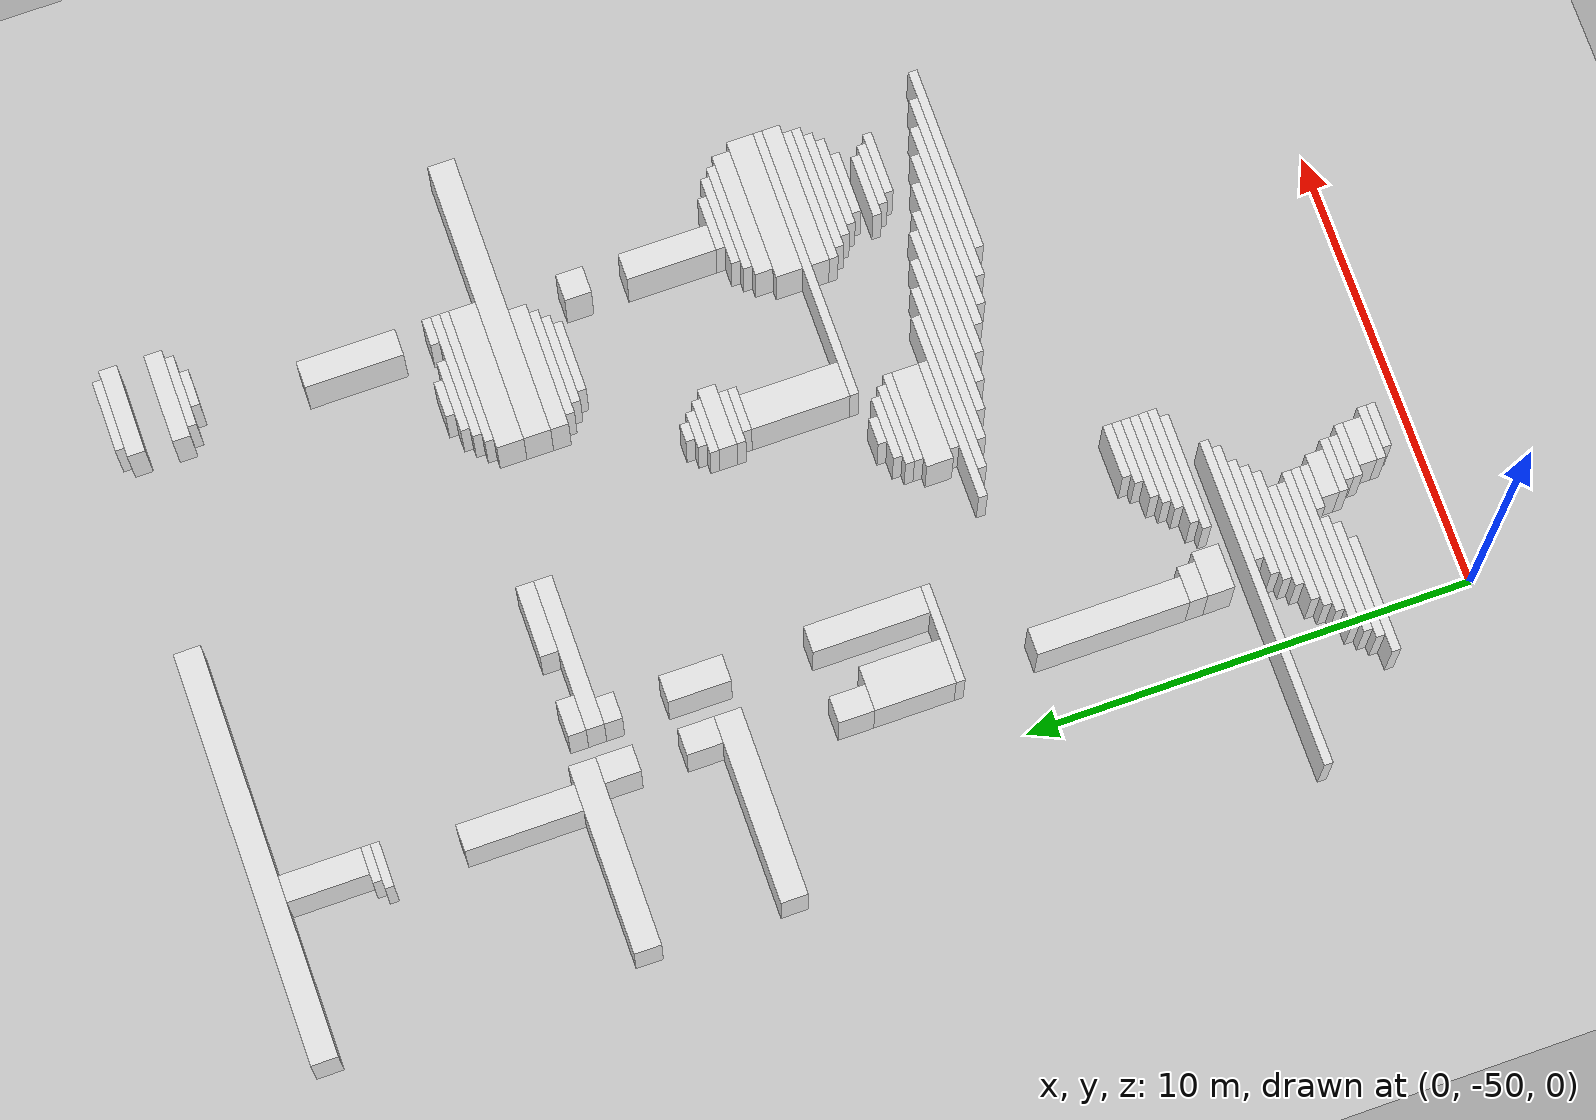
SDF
<sdf version="1.7">
 <world name="default">
  <model name="ground_plane">
   <static>1</static>
   <link name="link">
    <collision name="collision">
     <geometry><plane><normal>0 0 1</normal><size>120 120</size></plane></geometry>
    </collision>
    <visual name="visual">
     <geometry><plane><normal>0 0 1</normal><size>120 120</size></plane></geometry>
     <material>
      <script><uri>file://media/materials/scripts/gazebo.material</uri><name>Gazebo/Grey</name></script>
     </material>
    </visual>
   </link>
  </model>
  <model name="random_complex_02_model">
   <static>1</static>
   <link name="obs_2906">
    <pose>12.6000 -23.9000 0.8000 0 0 0</pose>
    <collision name="obs_2906_col"><geometry><box><size>1.6000 0.2000 1.6000</size></box></geometry></collision>
    <visual name="obs_2906_vis">
     <geometry><box><size>1.6000 0.2000 1.6000</size></box></geometry>
     <material>
      <script><uri>file://media/materials/scripts/gazebo.material</uri><name>Gazebo/White</name></script>
     </material>
    </visual>
   </link>
   <link name="obs_2909">
    <pose>2.6000 -23.9000 0.8000 0 0 0</pose>
    <collision name="obs_2909_col"><geometry><box><size>9.2000 0.6000 1.6000</size></box></geometry></collision>
    <visual name="obs_2909_vis">
     <geometry><box><size>9.2000 0.6000 1.6000</size></box></geometry>
     <material>
      <script><uri>file://media/materials/scripts/gazebo.material</uri><name>Gazebo/White</name></script>
     </material>
    </visual>
   </link>
   <link name="obs_2919">
    <pose>12.6000 -24.2000 0.8000 0 0 0</pose>
    <collision name="obs_2919_col"><geometry><box><size>2.0000 0.4000 1.6000</size></box></geometry></collision>
    <visual name="obs_2919_vis">
     <geometry><box><size>2.0000 0.4000 1.6000</size></box></geometry>
     <material>
      <script><uri>file://media/materials/scripts/gazebo.material</uri><name>Gazebo/White</name></script>
     </material>
    </visual>
   </link>
   <link name="obs_2958">
    <pose>12.6000 -25.2000 0.8000 0 0 0</pose>
    <collision name="obs_2958_col"><geometry><box><size>2.0000 0.4000 1.6000</size></box></geometry></collision>
    <visual name="obs_2958_vis">
     <geometry><box><size>2.0000 0.4000 1.6000</size></box></geometry>
     <material>
      <script><uri>file://media/materials/scripts/gazebo.material</uri><name>Gazebo/White</name></script>
     </material>
    </visual>
   </link>
   <link name="obs_2969">
    <pose>12.6000 -25.5000 0.8000 0 0 0</pose>
    <collision name="obs_2969_col"><geometry><box><size>1.6000 0.2000 1.6000</size></box></geometry></collision>
    <visual name="obs_2969_vis">
     <geometry><box><size>1.6000 0.2000 1.6000</size></box></geometry>
     <material>
      <script><uri>file://media/materials/scripts/gazebo.material</uri><name>Gazebo/White</name></script>
     </material>
    </visual>
   </link>
   <link name="obs_2974">
    <pose>12.6000 -25.7000 0.8000 0 0 0</pose>
    <collision name="obs_2974_col"><geometry><box><size>0.8000 0.2000 1.6000</size></box></geometry></collision>
    <visual name="obs_2974_vis">
     <geometry><box><size>0.8000 0.2000 1.6000</size></box></geometry>
     <material>
      <script><uri>file://media/materials/scripts/gazebo.material</uri><name>Gazebo/White</name></script>
     </material>
    </visual>
   </link>
   <link name="obs_2977">
    <pose>1.7000 -25.1000 0.8000 0 0 0</pose>
    <collision name="obs_2977_col"><geometry><box><size>0.6000 1.8000 1.6000</size></box></geometry></collision>
    <visual name="obs_2977_vis">
     <geometry><box><size>0.6000 1.8000 1.6000</size></box></geometry>
     <material>
      <script><uri>file://media/materials/scripts/gazebo.material</uri><name>Gazebo/White</name></script>
     </material>
    </visual>
   </link>
   <link name="obs_2985">
    <pose>1.6000 -26.1000 0.8000 0 0 0</pose>
    <collision name="obs_2985_col"><geometry><box><size>0.8000 0.2000 1.6000</size></box></geometry></collision>
    <visual name="obs_2985_vis">
     <geometry><box><size>0.8000 0.2000 1.6000</size></box></geometry>
     <material>
      <script><uri>file://media/materials/scripts/gazebo.material</uri><name>Gazebo/White</name></script>
     </material>
    </visual>
   </link>
   <link name="obs_2991">
    <pose>1.5000 -26.3000 0.8000 0 0 0</pose>
    <collision name="obs_2991_col"><geometry><box><size>1.0000 0.2000 1.6000</size></box></geometry></collision>
    <visual name="obs_2991_vis">
     <geometry><box><size>1.0000 0.2000 1.6000</size></box></geometry>
     <material>
      <script><uri>file://media/materials/scripts/gazebo.material</uri><name>Gazebo/White</name></script>
     </material>
    </visual>
   </link>
   <link name="obs_3084">
    <pose>12.1000 -29.1000 0.8000 0 0 0</pose>
    <collision name="obs_3084_col"><geometry><box><size>0.6000 2.2000 1.6000</size></box></geometry></collision>
    <visual name="obs_3084_vis">
     <geometry><box><size>0.6000 2.2000 1.6000</size></box></geometry>
     <material>
      <script><uri>file://media/materials/scripts/gazebo.material</uri><name>Gazebo/White</name></script>
     </material>
    </visual>
   </link>
   <link name="obs_3094">
    <pose>1.5000 -29.3000 0.8000 0 0 0</pose>
    <collision name="obs_3094_col"><geometry><box><size>0.6000 2.6000 1.6000</size></box></geometry></collision>
    <visual name="obs_3094_vis">
     <geometry><box><size>0.6000 2.6000 1.6000</size></box></geometry>
     <material>
      <script><uri>file://media/materials/scripts/gazebo.material</uri><name>Gazebo/White</name></script>
     </material>
    </visual>
   </link>
   <link name="obs_3104">
    <pose>10.6000 -30.7000 0.8000 0 0 0</pose>
    <collision name="obs_3104_col"><geometry><box><size>0.8000 0.2000 1.6000</size></box></geometry></collision>
    <visual name="obs_3104_vis">
     <geometry><box><size>0.8000 0.2000 1.6000</size></box></geometry>
     <material>
      <script><uri>file://media/materials/scripts/gazebo.material</uri><name>Gazebo/White</name></script>
     </material>
    </visual>
   </link>
   <link name="obs_3109">
    <pose>10.6000 -30.9000 0.8000 0 0 0</pose>
    <collision name="obs_3109_col"><geometry><box><size>1.6000 0.2000 1.6000</size></box></geometry></collision>
    <visual name="obs_3109_vis">
     <geometry><box><size>1.6000 0.2000 1.6000</size></box></geometry>
     <material>
      <script><uri>file://media/materials/scripts/gazebo.material</uri><name>Gazebo/White</name></script>
     </material>
    </visual>
   </link>
   <link name="obs_3110">
    <pose>12.1000 -30.9000 0.8000 0 0 0</pose>
    <collision name="obs_3110_col"><geometry><box><size>0.6000 0.2000 1.6000</size></box></geometry></collision>
    <visual name="obs_3110_vis">
     <geometry><box><size>0.6000 0.2000 1.6000</size></box></geometry>
     <material>
      <script><uri>file://media/materials/scripts/gazebo.material</uri><name>Gazebo/White</name></script>
     </material>
    </visual>
   </link>
   <link name="obs_3114">
    <pose>0.1000 -30.9000 0.8000 0 0 0</pose>
    <collision name="obs_3114_col"><geometry><box><size>4.2000 0.6000 1.6000</size></box></geometry></collision>
    <visual name="obs_3114_vis">
     <geometry><box><size>4.2000 0.6000 1.6000</size></box></geometry>
     <material>
      <script><uri>file://media/materials/scripts/gazebo.material</uri><name>Gazebo/White</name></script>
     </material>
    </visual>
   </link>
   <link name="obs_3115">
    <pose>3.2000 -31.0000 0.8000 0 0 0</pose>
    <collision name="obs_3115_col"><geometry><box><size>0.8000 0.4000 1.6000</size></box></geometry></collision>
    <visual name="obs_3115_vis">
     <geometry><box><size>0.8000 0.4000 1.6000</size></box></geometry>
     <material>
      <script><uri>file://media/materials/scripts/gazebo.material</uri><name>Gazebo/White</name></script>
     </material>
    </visual>
   </link>
   <link name="obs_3116">
    <pose>5.4000 -31.0000 0.8000 0 0 0</pose>
    <collision name="obs_3116_col"><geometry><box><size>1.6000 0.4000 1.6000</size></box></geometry></collision>
    <visual name="obs_3116_vis">
     <geometry><box><size>1.6000 0.4000 1.6000</size></box></geometry>
     <material>
      <script><uri>file://media/materials/scripts/gazebo.material</uri><name>Gazebo/White</name></script>
     </material>
    </visual>
   </link>
   <link name="obs_3119">
    <pose>11.0000 -31.1000 0.8000 0 0 0</pose>
    <collision name="obs_3119_col"><geometry><box><size>2.8000 0.2000 1.6000</size></box></geometry></collision>
    <visual name="obs_3119_vis">
     <geometry><box><size>2.8000 0.2000 1.6000</size></box></geometry>
     <material>
      <script><uri>file://media/materials/scripts/gazebo.material</uri><name>Gazebo/White</name></script>
     </material>
    </visual>
   </link>
   <link name="obs_3124">
    <pose>10.9000 -31.3000 0.8000 0 0 0</pose>
    <collision name="obs_3124_col"><geometry><box><size>3.0000 0.2000 1.6000</size></box></geometry></collision>
    <visual name="obs_3124_vis">
     <geometry><box><size>3.0000 0.2000 1.6000</size></box></geometry>
     <material>
      <script><uri>file://media/materials/scripts/gazebo.material</uri><name>Gazebo/White</name></script>
     </material>
    </visual>
   </link>
   <link name="obs_3128">
    <pose>4.5000 -31.4000 0.8000 0 0 0</pose>
    <collision name="obs_3128_col"><geometry><box><size>3.4000 0.4000 1.6000</size></box></geometry></collision>
    <visual name="obs_3128_vis">
     <geometry><box><size>3.4000 0.4000 1.6000</size></box></geometry>
     <material>
      <script><uri>file://media/materials/scripts/gazebo.material</uri><name>Gazebo/White</name></script>
     </material>
    </visual>
   </link>
   <link name="obs_3141">
    <pose>1.9000 -31.6000 0.8000 0 0 0</pose>
    <collision name="obs_3141_col"><geometry><box><size>0.6000 0.8000 1.6000</size></box></geometry></collision>
    <visual name="obs_3141_vis">
     <geometry><box><size>0.6000 0.8000 1.6000</size></box></geometry>
     <material>
      <script><uri>file://media/materials/scripts/gazebo.material</uri><name>Gazebo/White</name></script>
     </material>
    </visual>
   </link>
   <link name="obs_3142">
    <pose>10.8000 -31.7000 0.8000 0 0 0</pose>
    <collision name="obs_3142_col"><geometry><box><size>3.2000 0.6000 1.6000</size></box></geometry></collision>
    <visual name="obs_3142_vis">
     <geometry><box><size>3.2000 0.6000 1.6000</size></box></geometry>
     <material>
      <script><uri>file://media/materials/scripts/gazebo.material</uri><name>Gazebo/White</name></script>
     </material>
    </visual>
   </link>
   <link name="obs_3143">
    <pose>3.1000 -31.8000 0.8000 0 0 0</pose>
    <collision name="obs_3143_col"><geometry><box><size>0.6000 0.4000 1.6000</size></box></geometry></collision>
    <visual name="obs_3143_vis">
     <geometry><box><size>0.6000 0.4000 1.6000</size></box></geometry>
     <material>
      <script><uri>file://media/materials/scripts/gazebo.material</uri><name>Gazebo/White</name></script>
     </material>
    </visual>
   </link>
   <link name="obs_3159">
    <pose>12.4000 -32.3000 0.8000 0 0 0</pose>
    <collision name="obs_3159_col"><geometry><box><size>6.4000 0.6000 1.6000</size></box></geometry></collision>
    <visual name="obs_3159_vis">
     <geometry><box><size>6.4000 0.6000 1.6000</size></box></geometry>
     <material>
      <script><uri>file://media/materials/scripts/gazebo.material</uri><name>Gazebo/White</name></script>
     </material>
    </visual>
   </link>
   <link name="obs_3164">
    <pose>10.6000 -32.8000 0.8000 0 0 0</pose>
    <collision name="obs_3164_col"><geometry><box><size>2.8000 0.4000 1.6000</size></box></geometry></collision>
    <visual name="obs_3164_vis">
     <geometry><box><size>2.8000 0.4000 1.6000</size></box></geometry>
     <material>
      <script><uri>file://media/materials/scripts/gazebo.material</uri><name>Gazebo/White</name></script>
     </material>
    </visual>
   </link>
   <link name="obs_3169">
    <pose>10.6000 -33.1000 0.8000 0 0 0</pose>
    <collision name="obs_3169_col"><geometry><box><size>2.4000 0.2000 1.6000</size></box></geometry></collision>
    <visual name="obs_3169_vis">
     <geometry><box><size>2.4000 0.2000 1.6000</size></box></geometry>
     <material>
      <script><uri>file://media/materials/scripts/gazebo.material</uri><name>Gazebo/White</name></script>
     </material>
    </visual>
   </link>
   <link name="obs_3172">
    <pose>10.6000 -33.3000 0.8000 0 0 0</pose>
    <collision name="obs_3172_col"><geometry><box><size>2.0000 0.2000 1.6000</size></box></geometry></collision>
    <visual name="obs_3172_vis">
     <geometry><box><size>2.0000 0.2000 1.6000</size></box></geometry>
     <material>
      <script><uri>file://media/materials/scripts/gazebo.material</uri><name>Gazebo/White</name></script>
     </material>
    </visual>
   </link>
   <link name="obs_3174">
    <pose>10.6000 -33.5000 0.8000 0 0 0</pose>
    <collision name="obs_3174_col"><geometry><box><size>1.6000 0.2000 1.6000</size></box></geometry></collision>
    <visual name="obs_3174_vis">
     <geometry><box><size>1.6000 0.2000 1.6000</size></box></geometry>
     <material>
      <script><uri>file://media/materials/scripts/gazebo.material</uri><name>Gazebo/White</name></script>
     </material>
    </visual>
   </link>
   <link name="obs_3176">
    <pose>1.9000 -33.4000 0.8000 0 0 0</pose>
    <collision name="obs_3176_col"><geometry><box><size>0.6000 0.8000 1.6000</size></box></geometry></collision>
    <visual name="obs_3176_vis">
     <geometry><box><size>0.6000 0.8000 1.6000</size></box></geometry>
     <material>
      <script><uri>file://media/materials/scripts/gazebo.material</uri><name>Gazebo/White</name></script>
     </material>
    </visual>
   </link>
   <link name="obs_3181">
    <pose>3.1000 -33.7000 0.8000 0 0 0</pose>
    <collision name="obs_3181_col"><geometry><box><size>0.6000 1.4000 1.6000</size></box></geometry></collision>
    <visual name="obs_3181_vis">
     <geometry><box><size>0.6000 1.4000 1.6000</size></box></geometry>
     <material>
      <script><uri>file://media/materials/scripts/gazebo.material</uri><name>Gazebo/White</name></script>
     </material>
    </visual>
   </link>
   <link name="obs_3182">
    <pose>0.1000 -34.1000 0.8000 0 0 0</pose>
    <collision name="obs_3182_col"><geometry><box><size>4.2000 0.6000 1.6000</size></box></geometry></collision>
    <visual name="obs_3182_vis">
     <geometry><box><size>4.2000 0.6000 1.6000</size></box></geometry>
     <material>
      <script><uri>file://media/materials/scripts/gazebo.material</uri><name>Gazebo/White</name></script>
     </material>
    </visual>
   </link>
   <link name="obs_3183">
    <pose>12.1000 -34.1000 0.8000 0 0 0</pose>
    <collision name="obs_3183_col"><geometry><box><size>0.6000 0.6000 1.6000</size></box></geometry></collision>
    <visual name="obs_3183_vis">
     <geometry><box><size>0.6000 0.6000 1.6000</size></box></geometry>
     <material>
      <script><uri>file://media/materials/scripts/gazebo.material</uri><name>Gazebo/White</name></script>
     </material>
    </visual>
   </link>
   <link name="obs_3197">
    <pose>8.2000 -35.3000 0.8000 0 0 0</pose>
    <collision name="obs_3197_col"><geometry><box><size>0.4000 0.2000 1.6000</size></box></geometry></collision>
    <visual name="obs_3197_vis">
     <geometry><box><size>0.4000 0.2000 1.6000</size></box></geometry>
     <material>
      <script><uri>file://media/materials/scripts/gazebo.material</uri><name>Gazebo/White</name></script>
     </material>
    </visual>
   </link>
   <link name="obs_3201">
    <pose>8.2000 -35.5000 0.8000 0 0 0</pose>
    <collision name="obs_3201_col"><geometry><box><size>0.8000 0.2000 1.6000</size></box></geometry></collision>
    <visual name="obs_3201_vis">
     <geometry><box><size>0.8000 0.2000 1.6000</size></box></geometry>
     <material>
      <script><uri>file://media/materials/scripts/gazebo.material</uri><name>Gazebo/White</name></script>
     </material>
    </visual>
   </link>
   <link name="obs_3204">
    <pose>8.2000 -35.7000 0.8000 0 0 0</pose>
    <collision name="obs_3204_col"><geometry><box><size>1.2000 0.2000 1.6000</size></box></geometry></collision>
    <visual name="obs_3204_vis">
     <geometry><box><size>1.2000 0.2000 1.6000</size></box></geometry>
     <material>
      <script><uri>file://media/materials/scripts/gazebo.material</uri><name>Gazebo/White</name></script>
     </material>
    </visual>
   </link>
   <link name="obs_3207">
    <pose>8.3000 -36.0000 0.8000 0 0 0</pose>
    <collision name="obs_3207_col"><geometry><box><size>1.4000 0.4000 1.6000</size></box></geometry></collision>
    <visual name="obs_3207_vis">
     <geometry><box><size>1.4000 0.4000 1.6000</size></box></geometry>
     <material>
      <script><uri>file://media/materials/scripts/gazebo.material</uri><name>Gazebo/White</name></script>
     </material>
    </visual>
   </link>
   <link name="obs_3211">
    <pose>8.2000 -36.3000 0.8000 0 0 0</pose>
    <collision name="obs_3211_col"><geometry><box><size>1.2000 0.2000 1.6000</size></box></geometry></collision>
    <visual name="obs_3211_vis">
     <geometry><box><size>1.2000 0.2000 1.6000</size></box></geometry>
     <material>
      <script><uri>file://media/materials/scripts/gazebo.material</uri><name>Gazebo/White</name></script>
     </material>
    </visual>
   </link>
   <link name="obs_3215">
    <pose>8.3000 -36.5000 0.8000 0 0 0</pose>
    <collision name="obs_3215_col"><geometry><box><size>1.0000 0.2000 1.6000</size></box></geometry></collision>
    <visual name="obs_3215_vis">
     <geometry><box><size>1.0000 0.2000 1.6000</size></box></geometry>
     <material>
      <script><uri>file://media/materials/scripts/gazebo.material</uri><name>Gazebo/White</name></script>
     </material>
    </visual>
   </link>
   <link name="obs_3221">
    <pose>1.5000 -36.6000 0.8000 0 0 0</pose>
    <collision name="obs_3221_col"><geometry><box><size>0.6000 0.8000 1.6000</size></box></geometry></collision>
    <visual name="obs_3221_vis">
     <geometry><box><size>0.6000 0.8000 1.6000</size></box></geometry>
     <material>
      <script><uri>file://media/materials/scripts/gazebo.material</uri><name>Gazebo/White</name></script>
     </material>
    </visual>
   </link>
   <link name="obs_3226">
    <pose>12.1000 -36.2000 0.8000 0 0 0</pose>
    <collision name="obs_3226_col"><geometry><box><size>0.6000 2.0000 1.6000</size></box></geometry></collision>
    <visual name="obs_3226_vis">
     <geometry><box><size>0.6000 2.0000 1.6000</size></box></geometry>
     <material>
      <script><uri>file://media/materials/scripts/gazebo.material</uri><name>Gazebo/White</name></script>
     </material>
    </visual>
   </link>
   <link name="obs_3236">
    <pose>12.4000 -37.3000 0.8000 0 0 0</pose>
    <collision name="obs_3236_col"><geometry><box><size>1.2000 0.2000 1.6000</size></box></geometry></collision>
    <visual name="obs_3236_vis">
     <geometry><box><size>1.2000 0.2000 1.6000</size></box></geometry>
     <material>
      <script><uri>file://media/materials/scripts/gazebo.material</uri><name>Gazebo/White</name></script>
     </material>
    </visual>
   </link>
   <link name="obs_3242">
    <pose>12.4000 -37.5000 0.8000 0 0 0</pose>
    <collision name="obs_3242_col"><geometry><box><size>2.0000 0.2000 1.6000</size></box></geometry></collision>
    <visual name="obs_3242_vis">
     <geometry><box><size>2.0000 0.2000 1.6000</size></box></geometry>
     <material>
      <script><uri>file://media/materials/scripts/gazebo.material</uri><name>Gazebo/White</name></script>
     </material>
    </visual>
   </link>
   <link name="obs_3247">
    <pose>12.4000 -37.7000 0.8000 0 0 0</pose>
    <collision name="obs_3247_col"><geometry><box><size>2.4000 0.2000 1.6000</size></box></geometry></collision>
    <visual name="obs_3247_vis">
     <geometry><box><size>2.4000 0.2000 1.6000</size></box></geometry>
     <material>
      <script><uri>file://media/materials/scripts/gazebo.material</uri><name>Gazebo/White</name></script>
     </material>
    </visual>
   </link>
   <link name="obs_3259">
    <pose>12.4000 -38.0000 0.8000 0 0 0</pose>
    <collision name="obs_3259_col"><geometry><box><size>2.8000 0.4000 1.6000</size></box></geometry></collision>
    <visual name="obs_3259_vis">
     <geometry><box><size>2.8000 0.4000 1.6000</size></box></geometry>
     <material>
      <script><uri>file://media/materials/scripts/gazebo.material</uri><name>Gazebo/White</name></script>
     </material>
    </visual>
   </link>
   <link name="obs_3271">
    <pose>3.1000 -37.5000 0.8000 0 0 0</pose>
    <collision name="obs_3271_col"><geometry><box><size>0.6000 2.6000 1.6000</size></box></geometry></collision>
    <visual name="obs_3271_vis">
     <geometry><box><size>0.6000 2.6000 1.6000</size></box></geometry>
     <material>
      <script><uri>file://media/materials/scripts/gazebo.material</uri><name>Gazebo/White</name></script>
     </material>
    </visual>
   </link>
   <link name="obs_3272">
    <pose>8.2000 -37.7000 0.8000 0 0 0</pose>
    <collision name="obs_3272_col"><geometry><box><size>0.8000 2.2000 1.6000</size></box></geometry></collision>
    <visual name="obs_3272_vis">
     <geometry><box><size>0.8000 2.2000 1.6000</size></box></geometry>
     <material>
      <script><uri>file://media/materials/scripts/gazebo.material</uri><name>Gazebo/White</name></script>
     </material>
    </visual>
   </link>
   <link name="obs_3273">
    <pose>1.7000 -37.9000 0.8000 0 0 0</pose>
    <collision name="obs_3273_col"><geometry><box><size>1.0000 1.8000 1.6000</size></box></geometry></collision>
    <visual name="obs_3273_vis">
     <geometry><box><size>1.0000 1.8000 1.6000</size></box></geometry>
     <material>
      <script><uri>file://media/materials/scripts/gazebo.material</uri><name>Gazebo/White</name></script>
     </material>
    </visual>
   </link>
   <link name="obs_3275">
    <pose>12.4000 -38.5000 0.8000 0 0 0</pose>
    <collision name="obs_3275_col"><geometry><box><size>3.2000 0.6000 1.6000</size></box></geometry></collision>
    <visual name="obs_3275_vis">
     <geometry><box><size>3.2000 0.6000 1.6000</size></box></geometry>
     <material>
      <script><uri>file://media/materials/scripts/gazebo.material</uri><name>Gazebo/White</name></script>
     </material>
    </visual>
   </link>
   <link name="obs_3286">
    <pose>2.3000 -38.9000 0.8000 0 0 0</pose>
    <collision name="obs_3286_col"><geometry><box><size>2.2000 0.2000 1.6000</size></box></geometry></collision>
    <visual name="obs_3286_vis">
     <geometry><box><size>2.2000 0.2000 1.6000</size></box></geometry>
     <material>
      <script><uri>file://media/materials/scripts/gazebo.material</uri><name>Gazebo/White</name></script>
     </material>
    </visual>
   </link>
   <link name="obs_3287">
    <pose>10.9000 -38.9000 0.8000 0 0 0</pose>
    <collision name="obs_3287_col"><geometry><box><size>6.2000 0.2000 1.6000</size></box></geometry></collision>
    <visual name="obs_3287_vis">
     <geometry><box><size>6.2000 0.2000 1.6000</size></box></geometry>
     <material>
      <script><uri>file://media/materials/scripts/gazebo.material</uri><name>Gazebo/White</name></script>
     </material>
    </visual>
   </link>
   <link name="obs_3292">
    <pose>6.9000 -39.1000 0.8000 0 0 0</pose>
    <collision name="obs_3292_col"><geometry><box><size>0.6000 0.2000 1.6000</size></box></geometry></collision>
    <visual name="obs_3292_vis">
     <geometry><box><size>0.6000 0.2000 1.6000</size></box></geometry>
     <material>
      <script><uri>file://media/materials/scripts/gazebo.material</uri><name>Gazebo/White</name></script>
     </material>
    </visual>
   </link>
   <link name="obs_3293">
    <pose>12.4000 -39.2000 0.8000 0 0 0</pose>
    <collision name="obs_3293_col"><geometry><box><size>3.2000 0.4000 1.6000</size></box></geometry></collision>
    <visual name="obs_3293_vis">
     <geometry><box><size>3.2000 0.4000 1.6000</size></box></geometry>
     <material>
      <script><uri>file://media/materials/scripts/gazebo.material</uri><name>Gazebo/White</name></script>
     </material>
    </visual>
   </link>
   <link name="obs_3297">
    <pose>6.9000 -39.3000 0.8000 0 0 0</pose>
    <collision name="obs_3297_col"><geometry><box><size>1.4000 0.2000 1.6000</size></box></geometry></collision>
    <visual name="obs_3297_vis">
     <geometry><box><size>1.4000 0.2000 1.6000</size></box></geometry>
     <material>
      <script><uri>file://media/materials/scripts/gazebo.material</uri><name>Gazebo/White</name></script>
     </material>
    </visual>
   </link>
   <link name="obs_3300">
    <pose>6.9000 -39.5000 0.8000 0 0 0</pose>
    <collision name="obs_3300_col"><geometry><box><size>1.8000 0.2000 1.6000</size></box></geometry></collision>
    <visual name="obs_3300_vis">
     <geometry><box><size>1.8000 0.2000 1.6000</size></box></geometry>
     <material>
      <script><uri>file://media/materials/scripts/gazebo.material</uri><name>Gazebo/White</name></script>
     </material>
    </visual>
   </link>
   <link name="obs_3301">
    <pose>12.3000 -39.5000 0.8000 0 0 0</pose>
    <collision name="obs_3301_col"><geometry><box><size>3.0000 0.2000 1.6000</size></box></geometry></collision>
    <visual name="obs_3301_vis">
     <geometry><box><size>3.0000 0.2000 1.6000</size></box></geometry>
     <material>
      <script><uri>file://media/materials/scripts/gazebo.material</uri><name>Gazebo/White</name></script>
     </material>
    </visual>
   </link>
   <link name="obs_3304">
    <pose>7.0000 -39.7000 0.8000 0 0 0</pose>
    <collision name="obs_3304_col"><geometry><box><size>2.0000 0.2000 1.6000</size></box></geometry></collision>
    <visual name="obs_3304_vis">
     <geometry><box><size>2.0000 0.2000 1.6000</size></box></geometry>
     <material>
      <script><uri>file://media/materials/scripts/gazebo.material</uri><name>Gazebo/White</name></script>
     </material>
    </visual>
   </link>
   <link name="obs_3305">
    <pose>12.4000 -39.7000 0.8000 0 0 0</pose>
    <collision name="obs_3305_col"><geometry><box><size>2.8000 0.2000 1.6000</size></box></geometry></collision>
    <visual name="obs_3305_vis">
     <geometry><box><size>2.8000 0.2000 1.6000</size></box></geometry>
     <material>
      <script><uri>file://media/materials/scripts/gazebo.material</uri><name>Gazebo/White</name></script>
     </material>
    </visual>
   </link>
   <link name="obs_3310">
    <pose>12.4000 -39.9000 0.8000 0 0 0</pose>
    <collision name="obs_3310_col"><geometry><box><size>2.4000 0.2000 1.6000</size></box></geometry></collision>
    <visual name="obs_3310_vis">
     <geometry><box><size>2.4000 0.2000 1.6000</size></box></geometry>
     <material>
      <script><uri>file://media/materials/scripts/gazebo.material</uri><name>Gazebo/White</name></script>
     </material>
    </visual>
   </link>
   <link name="obs_3314">
    <pose>12.4000 -40.1000 0.8000 0 0 0</pose>
    <collision name="obs_3314_col"><geometry><box><size>2.0000 0.2000 1.6000</size></box></geometry></collision>
    <visual name="obs_3314_vis">
     <geometry><box><size>2.0000 0.2000 1.6000</size></box></geometry>
     <material>
      <script><uri>file://media/materials/scripts/gazebo.material</uri><name>Gazebo/White</name></script>
     </material>
    </visual>
   </link>
   <link name="obs_3315">
    <pose>6.9000 -40.1000 0.8000 0 0 0</pose>
    <collision name="obs_3315_col"><geometry><box><size>2.2000 0.6000 1.6000</size></box></geometry></collision>
    <visual name="obs_3315_vis">
     <geometry><box><size>2.2000 0.6000 1.6000</size></box></geometry>
     <material>
      <script><uri>file://media/materials/scripts/gazebo.material</uri><name>Gazebo/White</name></script>
     </material>
    </visual>
   </link>
   <link name="obs_3319">
    <pose>12.3000 -40.3000 0.8000 0 0 0</pose>
    <collision name="obs_3319_col"><geometry><box><size>1.4000 0.2000 1.6000</size></box></geometry></collision>
    <visual name="obs_3319_vis">
     <geometry><box><size>1.4000 0.2000 1.6000</size></box></geometry>
     <material>
      <script><uri>file://media/materials/scripts/gazebo.material</uri><name>Gazebo/White</name></script>
     </material>
    </visual>
   </link>
   <link name="obs_3326">
    <pose>7.0000 -40.5000 0.8000 0 0 0</pose>
    <collision name="obs_3326_col"><geometry><box><size>2.0000 0.2000 1.6000</size></box></geometry></collision>
    <visual name="obs_3326_vis">
     <geometry><box><size>2.0000 0.2000 1.6000</size></box></geometry>
     <material>
      <script><uri>file://media/materials/scripts/gazebo.material</uri><name>Gazebo/White</name></script>
     </material>
    </visual>
   </link>
   <link name="obs_3332">
    <pose>6.9000 -40.7000 0.8000 0 0 0</pose>
    <collision name="obs_3332_col"><geometry><box><size>4.2000 0.2000 1.6000</size></box></geometry></collision>
    <visual name="obs_3332_vis">
     <geometry><box><size>4.2000 0.2000 1.6000</size></box></geometry>
     <material>
      <script><uri>file://media/materials/scripts/gazebo.material</uri><name>Gazebo/White</name></script>
     </material>
    </visual>
   </link>
   <link name="obs_3333">
    <pose>12.1000 -40.7000 0.8000 0 0 0</pose>
    <collision name="obs_3333_col"><geometry><box><size>1.4000 0.2000 1.6000</size></box></geometry></collision>
    <visual name="obs_3333_vis">
     <geometry><box><size>1.4000 0.2000 1.6000</size></box></geometry>
     <material>
      <script><uri>file://media/materials/scripts/gazebo.material</uri><name>Gazebo/White</name></script>
     </material>
    </visual>
   </link>
   <link name="obs_3338">
    <pose>7.5000 -40.9000 0.8000 0 0 0</pose>
    <collision name="obs_3338_col"><geometry><box><size>4.2000 0.2000 1.6000</size></box></geometry></collision>
    <visual name="obs_3338_vis">
     <geometry><box><size>4.2000 0.2000 1.6000</size></box></geometry>
     <material>
      <script><uri>file://media/materials/scripts/gazebo.material</uri><name>Gazebo/White</name></script>
     </material>
    </visual>
   </link>
   <link name="obs_3339">
    <pose>12.3000 -40.9000 0.8000 0 0 0</pose>
    <collision name="obs_3339_col"><geometry><box><size>1.4000 0.2000 1.6000</size></box></geometry></collision>
    <visual name="obs_3339_vis">
     <geometry><box><size>1.4000 0.2000 1.6000</size></box></geometry>
     <material>
      <script><uri>file://media/materials/scripts/gazebo.material</uri><name>Gazebo/White</name></script>
     </material>
    </visual>
   </link>
   <link name="obs_3347">
    <pose>8.1000 -41.1000 0.8000 0 0 0</pose>
    <collision name="obs_3347_col"><geometry><box><size>4.2000 0.2000 1.6000</size></box></geometry></collision>
    <visual name="obs_3347_vis">
     <geometry><box><size>4.2000 0.2000 1.6000</size></box></geometry>
     <material>
      <script><uri>file://media/materials/scripts/gazebo.material</uri><name>Gazebo/White</name></script>
     </material>
    </visual>
   </link>
   <link name="obs_3348">
    <pose>12.5000 -41.1000 0.8000 0 0 0</pose>
    <collision name="obs_3348_col"><geometry><box><size>1.4000 0.2000 1.6000</size></box></geometry></collision>
    <visual name="obs_3348_vis">
     <geometry><box><size>1.4000 0.2000 1.6000</size></box></geometry>
     <material>
      <script><uri>file://media/materials/scripts/gazebo.material</uri><name>Gazebo/White</name></script>
     </material>
    </visual>
   </link>
   <link name="obs_3355">
    <pose>8.7000 -41.3000 0.8000 0 0 0</pose>
    <collision name="obs_3355_col"><geometry><box><size>4.2000 0.2000 1.6000</size></box></geometry></collision>
    <visual name="obs_3355_vis">
     <geometry><box><size>4.2000 0.2000 1.6000</size></box></geometry>
     <material>
      <script><uri>file://media/materials/scripts/gazebo.material</uri><name>Gazebo/White</name></script>
     </material>
    </visual>
   </link>
   <link name="obs_3362">
    <pose>9.2000 -41.5000 0.8000 0 0 0</pose>
    <collision name="obs_3362_col"><geometry><box><size>4.0000 0.2000 1.6000</size></box></geometry></collision>
    <visual name="obs_3362_vis">
     <geometry><box><size>4.0000 0.2000 1.6000</size></box></geometry>
     <material>
      <script><uri>file://media/materials/scripts/gazebo.material</uri><name>Gazebo/White</name></script>
     </material>
    </visual>
   </link>
   <link name="obs_3372">
    <pose>9.8000 -41.7000 0.8000 0 0 0</pose>
    <collision name="obs_3372_col"><geometry><box><size>4.0000 0.2000 1.6000</size></box></geometry></collision>
    <visual name="obs_3372_vis">
     <geometry><box><size>4.0000 0.2000 1.6000</size></box></geometry>
     <material>
      <script><uri>file://media/materials/scripts/gazebo.material</uri><name>Gazebo/White</name></script>
     </material>
    </visual>
   </link>
   <link name="obs_3381">
    <pose>10.4000 -41.9000 0.8000 0 0 0</pose>
    <collision name="obs_3381_col"><geometry><box><size>4.0000 0.2000 1.6000</size></box></geometry></collision>
    <visual name="obs_3381_vis">
     <geometry><box><size>4.0000 0.2000 1.6000</size></box></geometry>
     <material>
      <script><uri>file://media/materials/scripts/gazebo.material</uri><name>Gazebo/White</name></script>
     </material>
    </visual>
   </link>
   <link name="obs_3391">
    <pose>10.9000 -42.1000 0.8000 0 0 0</pose>
    <collision name="obs_3391_col"><geometry><box><size>4.2000 0.2000 1.6000</size></box></geometry></collision>
    <visual name="obs_3391_vis">
     <geometry><box><size>4.2000 0.2000 1.6000</size></box></geometry>
     <material>
      <script><uri>file://media/materials/scripts/gazebo.material</uri><name>Gazebo/White</name></script>
     </material>
    </visual>
   </link>
   <link name="obs_3398">
    <pose>11.5000 -42.3000 0.8000 0 0 0</pose>
    <collision name="obs_3398_col"><geometry><box><size>4.2000 0.2000 1.6000</size></box></geometry></collision>
    <visual name="obs_3398_vis">
     <geometry><box><size>4.2000 0.2000 1.6000</size></box></geometry>
     <material>
      <script><uri>file://media/materials/scripts/gazebo.material</uri><name>Gazebo/White</name></script>
     </material>
    </visual>
   </link>
   <link name="obs_3405">
    <pose>12.1000 -42.5000 0.8000 0 0 0</pose>
    <collision name="obs_3405_col"><geometry><box><size>4.2000 0.2000 1.6000</size></box></geometry></collision>
    <visual name="obs_3405_vis">
     <geometry><box><size>4.2000 0.2000 1.6000</size></box></geometry>
     <material>
      <script><uri>file://media/materials/scripts/gazebo.material</uri><name>Gazebo/White</name></script>
     </material>
    </visual>
   </link>
   <link name="obs_3444">
    <pose>4.8000 -43.7000 0.8000 0 0 0</pose>
    <collision name="obs_3444_col"><geometry><box><size>1.2000 0.2000 1.6000</size></box></geometry></collision>
    <visual name="obs_3444_vis">
     <geometry><box><size>1.2000 0.2000 1.6000</size></box></geometry>
     <material>
      <script><uri>file://media/materials/scripts/gazebo.material</uri><name>Gazebo/White</name></script>
     </material>
    </visual>
   </link>
   <link name="obs_3449">
    <pose>1.5000 -42.3000 0.8000 0 0 0</pose>
    <collision name="obs_3449_col"><geometry><box><size>0.6000 3.4000 1.6000</size></box></geometry></collision>
    <visual name="obs_3449_vis">
     <geometry><box><size>0.6000 3.4000 1.6000</size></box></geometry>
     <material>
      <script><uri>file://media/materials/scripts/gazebo.material</uri><name>Gazebo/White</name></script>
     </material>
    </visual>
   </link>
   <link name="obs_3455">
    <pose>4.7000 -43.9000 0.8000 0 0 0</pose>
    <collision name="obs_3455_col"><geometry><box><size>1.4000 0.2000 1.6000</size></box></geometry></collision>
    <visual name="obs_3455_vis">
     <geometry><box><size>1.4000 0.2000 1.6000</size></box></geometry>
     <material>
      <script><uri>file://media/materials/scripts/gazebo.material</uri><name>Gazebo/White</name></script>
     </material>
    </visual>
   </link>
   <link name="obs_3465">
    <pose>4.5000 -44.1000 0.8000 0 0 0</pose>
    <collision name="obs_3465_col"><geometry><box><size>1.8000 0.2000 1.6000</size></box></geometry></collision>
    <visual name="obs_3465_vis">
     <geometry><box><size>1.8000 0.2000 1.6000</size></box></geometry>
     <material>
      <script><uri>file://media/materials/scripts/gazebo.material</uri><name>Gazebo/White</name></script>
     </material>
    </visual>
   </link>
   <link name="obs_3469">
    <pose>1.6000 -44.2000 0.8000 0 0 0</pose>
    <collision name="obs_3469_col"><geometry><box><size>0.8000 0.4000 1.6000</size></box></geometry></collision>
    <visual name="obs_3469_vis">
     <geometry><box><size>0.8000 0.4000 1.6000</size></box></geometry>
     <material>
      <script><uri>file://media/materials/scripts/gazebo.material</uri><name>Gazebo/White</name></script>
     </material>
    </visual>
   </link>
   <link name="obs_3475">
    <pose>4.4000 -44.3000 0.8000 0 0 0</pose>
    <collision name="obs_3475_col"><geometry><box><size>2.0000 0.2000 1.6000</size></box></geometry></collision>
    <visual name="obs_3475_vis">
     <geometry><box><size>2.0000 0.2000 1.6000</size></box></geometry>
     <material>
      <script><uri>file://media/materials/scripts/gazebo.material</uri><name>Gazebo/White</name></script>
     </material>
    </visual>
   </link>
   <link name="obs_3481">
    <pose>4.3000 -44.5000 0.8000 0 0 0</pose>
    <collision name="obs_3481_col"><geometry><box><size>2.2000 0.2000 1.6000</size></box></geometry></collision>
    <visual name="obs_3481_vis">
     <geometry><box><size>2.2000 0.2000 1.6000</size></box></geometry>
     <material>
      <script><uri>file://media/materials/scripts/gazebo.material</uri><name>Gazebo/White</name></script>
     </material>
    </visual>
   </link>
   <link name="obs_3488">
    <pose>4.1000 -44.7000 0.8000 0 0 0</pose>
    <collision name="obs_3488_col"><geometry><box><size>2.6000 0.2000 1.6000</size></box></geometry></collision>
    <visual name="obs_3488_vis">
     <geometry><box><size>2.6000 0.2000 1.6000</size></box></geometry>
     <material>
      <script><uri>file://media/materials/scripts/gazebo.material</uri><name>Gazebo/White</name></script>
     </material>
    </visual>
   </link>
   <link name="obs_3493">
    <pose>1.7000 -44.7000 0.8000 0 0 0</pose>
    <collision name="obs_3493_col"><geometry><box><size>1.0000 0.6000 1.6000</size></box></geometry></collision>
    <visual name="obs_3493_vis">
     <geometry><box><size>1.0000 0.6000 1.6000</size></box></geometry>
     <material>
      <script><uri>file://media/materials/scripts/gazebo.material</uri><name>Gazebo/White</name></script>
     </material>
    </visual>
   </link>
   <link name="obs_3498">
    <pose>3.9000 -44.9000 0.8000 0 0 0</pose>
    <collision name="obs_3498_col"><geometry><box><size>2.6000 0.2000 1.6000</size></box></geometry></collision>
    <visual name="obs_3498_vis">
     <geometry><box><size>2.6000 0.2000 1.6000</size></box></geometry>
     <material>
      <script><uri>file://media/materials/scripts/gazebo.material</uri><name>Gazebo/White</name></script>
     </material>
    </visual>
   </link>
   <link name="obs_3532">
    <pose>0.7000 -45.5000 0.8000 0 0 0</pose>
    <collision name="obs_3532_col"><geometry><box><size>7.4000 0.2000 1.6000</size></box></geometry></collision>
    <visual name="obs_3532_vis">
     <geometry><box><size>7.4000 0.2000 1.6000</size></box></geometry>
     <material>
      <script><uri>file://media/materials/scripts/gazebo.material</uri><name>Gazebo/White</name></script>
     </material>
    </visual>
   </link>
   <link name="obs_3541">
    <pose>2.9000 -45.7000 0.8000 0 0 0</pose>
    <collision name="obs_3541_col"><geometry><box><size>2.6000 0.2000 1.6000</size></box></geometry></collision>
    <visual name="obs_3541_vis">
     <geometry><box><size>2.6000 0.2000 1.6000</size></box></geometry>
     <material>
      <script><uri>file://media/materials/scripts/gazebo.material</uri><name>Gazebo/White</name></script>
     </material>
    </visual>
   </link>
   <link name="obs_3550">
    <pose>2.5000 -45.9000 0.8000 0 0 0</pose>
    <collision name="obs_3550_col"><geometry><box><size>2.6000 0.2000 1.6000</size></box></geometry></collision>
    <visual name="obs_3550_vis">
     <geometry><box><size>2.6000 0.2000 1.6000</size></box></geometry>
     <material>
      <script><uri>file://media/materials/scripts/gazebo.material</uri><name>Gazebo/White</name></script>
     </material>
    </visual>
   </link>
   <link name="obs_3556">
    <pose>2.3000 -46.1000 0.8000 0 0 0</pose>
    <collision name="obs_3556_col"><geometry><box><size>2.6000 0.2000 1.6000</size></box></geometry></collision>
    <visual name="obs_3556_vis">
     <geometry><box><size>2.6000 0.2000 1.6000</size></box></geometry>
     <material>
      <script><uri>file://media/materials/scripts/gazebo.material</uri><name>Gazebo/White</name></script>
     </material>
    </visual>
   </link>
   <link name="obs_3566">
    <pose>2.1000 -46.3000 0.8000 0 0 0</pose>
    <collision name="obs_3566_col"><geometry><box><size>2.6000 0.2000 1.6000</size></box></geometry></collision>
    <visual name="obs_3566_vis">
     <geometry><box><size>2.6000 0.2000 1.6000</size></box></geometry>
     <material>
      <script><uri>file://media/materials/scripts/gazebo.material</uri><name>Gazebo/White</name></script>
     </material>
    </visual>
   </link>
   <link name="obs_3572">
    <pose>1.7000 -46.5000 0.8000 0 0 0</pose>
    <collision name="obs_3572_col"><geometry><box><size>2.6000 0.2000 1.6000</size></box></geometry></collision>
    <visual name="obs_3572_vis">
     <geometry><box><size>2.6000 0.2000 1.6000</size></box></geometry>
     <material>
      <script><uri>file://media/materials/scripts/gazebo.material</uri><name>Gazebo/White</name></script>
     </material>
    </visual>
   </link>
   <link name="obs_3581">
    <pose>1.6000 -46.7000 0.8000 0 0 0</pose>
    <collision name="obs_3581_col"><geometry><box><size>2.8000 0.2000 1.6000</size></box></geometry></collision>
    <visual name="obs_3581_vis">
     <geometry><box><size>2.8000 0.2000 1.6000</size></box></geometry>
     <material>
      <script><uri>file://media/materials/scripts/gazebo.material</uri><name>Gazebo/White</name></script>
     </material>
    </visual>
   </link>
   <link name="obs_3589">
    <pose>1.6000 -46.9000 0.8000 0 0 0</pose>
    <collision name="obs_3589_col"><geometry><box><size>3.2000 0.2000 1.6000</size></box></geometry></collision>
    <visual name="obs_3589_vis">
     <geometry><box><size>3.2000 0.2000 1.6000</size></box></geometry>
     <material>
      <script><uri>file://media/materials/scripts/gazebo.material</uri><name>Gazebo/White</name></script>
     </material>
    </visual>
   </link>
   <link name="obs_3600">
    <pose>1.4000 -47.1000 0.8000 0 0 0</pose>
    <collision name="obs_3600_col"><geometry><box><size>3.6000 0.2000 1.6000</size></box></geometry></collision>
    <visual name="obs_3600_vis">
     <geometry><box><size>3.6000 0.2000 1.6000</size></box></geometry>
     <material>
      <script><uri>file://media/materials/scripts/gazebo.material</uri><name>Gazebo/White</name></script>
     </material>
    </visual>
   </link>
   <link name="obs_3609">
    <pose>0.7000 -47.3000 0.8000 0 0 0</pose>
    <collision name="obs_3609_col"><geometry><box><size>2.6000 0.2000 1.6000</size></box></geometry></collision>
    <visual name="obs_3609_vis">
     <geometry><box><size>2.6000 0.2000 1.6000</size></box></geometry>
     <material>
      <script><uri>file://media/materials/scripts/gazebo.material</uri><name>Gazebo/White</name></script>
     </material>
    </visual>
   </link>
   <link name="obs_3610">
    <pose>2.7000 -47.3000 0.8000 0 0 0</pose>
    <collision name="obs_3610_col"><geometry><box><size>1.0000 0.2000 1.6000</size></box></geometry></collision>
    <visual name="obs_3610_vis">
     <geometry><box><size>1.0000 0.2000 1.6000</size></box></geometry>
     <material>
      <script><uri>file://media/materials/scripts/gazebo.material</uri><name>Gazebo/White</name></script>
     </material>
    </visual>
   </link>
   <link name="obs_3618">
    <pose>0.5000 -47.5000 0.8000 0 0 0</pose>
    <collision name="obs_3618_col"><geometry><box><size>2.6000 0.2000 1.6000</size></box></geometry></collision>
    <visual name="obs_3618_vis">
     <geometry><box><size>2.6000 0.2000 1.6000</size></box></geometry>
     <material>
      <script><uri>file://media/materials/scripts/gazebo.material</uri><name>Gazebo/White</name></script>
     </material>
    </visual>
   </link>
   <link name="obs_3621">
    <pose>2.9000 -47.6000 0.8000 0 0 0</pose>
    <collision name="obs_3621_col"><geometry><box><size>1.0000 0.4000 1.6000</size></box></geometry></collision>
    <visual name="obs_3621_vis">
     <geometry><box><size>1.0000 0.4000 1.6000</size></box></geometry>
     <material>
      <script><uri>file://media/materials/scripts/gazebo.material</uri><name>Gazebo/White</name></script>
     </material>
    </visual>
   </link>
   <link name="obs_3625">
    <pose>0.1000 -47.7000 0.8000 0 0 0</pose>
    <collision name="obs_3625_col"><geometry><box><size>2.6000 0.2000 1.6000</size></box></geometry></collision>
    <visual name="obs_3625_vis">
     <geometry><box><size>2.6000 0.2000 1.6000</size></box></geometry>
     <material>
      <script><uri>file://media/materials/scripts/gazebo.material</uri><name>Gazebo/White</name></script>
     </material>
    </visual>
   </link>
   <link name="obs_3630">
    <pose>3.0000 -47.9000 0.8000 0 0 0</pose>
    <collision name="obs_3630_col"><geometry><box><size>1.2000 0.2000 1.6000</size></box></geometry></collision>
    <visual name="obs_3630_vis">
     <geometry><box><size>1.2000 0.2000 1.6000</size></box></geometry>
     <material>
      <script><uri>file://media/materials/scripts/gazebo.material</uri><name>Gazebo/White</name></script>
     </material>
    </visual>
   </link>
   <link name="obs_3637">
    <pose>3.1000 -48.1000 0.8000 0 0 0</pose>
    <collision name="obs_3637_col"><geometry><box><size>1.0000 0.2000 1.6000</size></box></geometry></collision>
    <visual name="obs_3637_vis">
     <geometry><box><size>1.0000 0.2000 1.6000</size></box></geometry>
     <material>
      <script><uri>file://media/materials/scripts/gazebo.material</uri><name>Gazebo/White</name></script>
     </material>
    </visual>
   </link>
   <link name="obs_3642">
    <pose>3.2000 -48.3000 0.8000 0 0 0</pose>
    <collision name="obs_3642_col"><geometry><box><size>1.2000 0.2000 1.6000</size></box></geometry></collision>
    <visual name="obs_3642_vis">
     <geometry><box><size>1.2000 0.2000 1.6000</size></box></geometry>
     <material>
      <script><uri>file://media/materials/scripts/gazebo.material</uri><name>Gazebo/White</name></script>
     </material>
    </visual>
   </link>
   <link name="obs_3651">
    <pose>3.3000 -48.6000 0.8000 0 0 0</pose>
    <collision name="obs_3651_col"><geometry><box><size>1.0000 0.4000 1.6000</size></box></geometry></collision>
    <visual name="obs_3651_vis">
     <geometry><box><size>1.0000 0.4000 1.6000</size></box></geometry>
     <material>
      <script><uri>file://media/materials/scripts/gazebo.material</uri><name>Gazebo/White</name></script>
     </material>
    </visual>
   </link>
   <link name="obs_3662">
    <pose>3.4000 -48.9000 0.8000 0 0 0</pose>
    <collision name="obs_3662_col"><geometry><box><size>1.2000 0.2000 1.6000</size></box></geometry></collision>
    <visual name="obs_3662_vis">
     <geometry><box><size>1.2000 0.2000 1.6000</size></box></geometry>
     <material>
      <script><uri>file://media/materials/scripts/gazebo.material</uri><name>Gazebo/White</name></script>
     </material>
    </visual>
   </link>
   <link name="obs_3671">
    <pose>3.5000 -49.1000 0.8000 0 0 0</pose>
    <collision name="obs_3671_col"><geometry><box><size>1.0000 0.2000 1.6000</size></box></geometry></collision>
    <visual name="obs_3671_vis">
     <geometry><box><size>1.0000 0.2000 1.6000</size></box></geometry>
     <material>
      <script><uri>file://media/materials/scripts/gazebo.material</uri><name>Gazebo/White</name></script>
     </material>
    </visual>
   </link>
  </model>
 </world>
</sdf>
